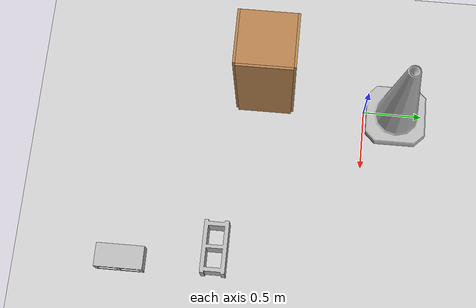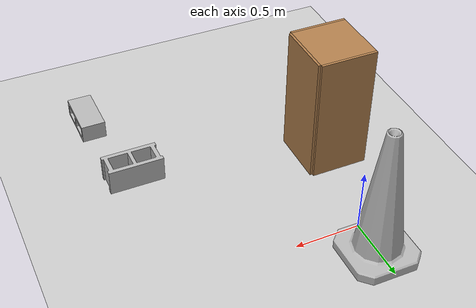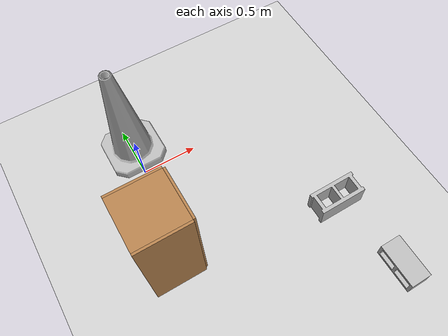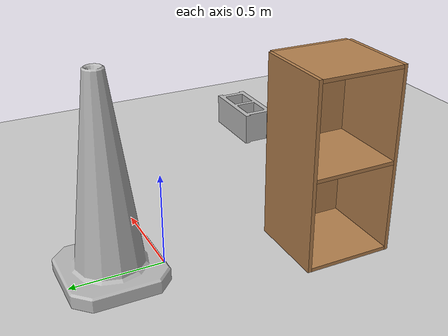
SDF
<sdf version="1.7">
 <world name="default">
  <light name="sun" type="directional">
   <pose>0 0 10 0 -0 0</pose>
   <diffuse>0.8 0.8 0.8 1</diffuse>
   <specular>0.2 0.2 0.2 1</specular>
   <attenuation>
    <range>1000</range>
    <constant>0.9</constant>
    <linear>0.01</linear>
    <quadratic>0.001</quadratic>
   </attenuation>
   <direction>-0.5 0.1 -0.9</direction>
   <spot><inner_angle>0</inner_angle><outer_angle>0</outer_angle><falloff>0</falloff></spot>
  </light>
  <model name="ground_plane">
   <static>1</static>
   <link name="link">
    <collision name="collision">
     <geometry><plane><normal>0 0 1</normal><size>100 100</size></plane></geometry>
     <surface>
      <contact><collide_bitmask>65535</collide_bitmask></contact>
      <friction><ode><mu>100</mu><mu2>50</mu2></ode></friction>
     </surface>
    </collision>
    <visual name="visual">
     <cast_shadows>0</cast_shadows>
     <geometry><plane><normal>0 0 1</normal><size>100 100</size></plane></geometry>
     <material>
      <script><uri>file://media/materials/scripts/gazebo.material</uri><name>Gazebo/Grey</name></script>
     </material>
    </visual>
   </link>
  </model>
  <gravity>0 0 -9.8</gravity>
  <magnetic_field>6e-06 2.3e-05 -4.2e-05</magnetic_field>
  <atmosphere type="adiabatic"/>
  <physics type="ode">
   <max_step_size>0.001</max_step_size>
   <real_time_factor>1</real_time_factor>
   <real_time_update_rate>1000</real_time_update_rate>
  </physics>
  <scene><ambient>0.4 0.4 0.4 1</ambient><background>0.7 0.7 0.7 1</background><shadows>1</shadows></scene>
  <audio><device>default</device></audio>
  <spherical_coordinates>
   <surface_model>EARTH_WGS84</surface_model>
   <latitude_deg>0</latitude_deg>
   <longitude_deg>0</longitude_deg>
   <elevation>0</elevation>
   <heading_deg>0</heading_deg>
  </spherical_coordinates>
  <model name="cabinet">
   <static>1</static>
   <link name="cabinet_bottom_plate">
    <inertial>
     <pose>0 0 -1 0 -0 0</pose>
     <inertia><ixx>2.05</ixx><ixy>0</ixy><ixz>0</ixz><iyy>2.05</iyy><iyz>0</iyz><izz>2.05</izz></inertia>
     <mass>25</mass>
    </inertial>
    <collision name="cabinet_bottom_plate_geom">
     <pose>0 0 0.01 0 -0 0</pose>
     <geometry><box><size>0.45 0.45 0.02</size></box></geometry>
    </collision>
    <visual name="cabinet_bottom_plate_geom_visual">
     <pose>0 0 0.01 0 -0 0</pose>
     <geometry><box><size>0.45 0.45 0.02</size></box></geometry>
     <material>
      <script><uri>file://media/materials/scripts/gazebo.material</uri><name>Gazebo/Wood</name></script>
     </material>
    </visual>
    <collision name="cabinet_bottom_plate_geom_cabinet_back_plate">
     <pose>0.235 0 0.51 0 -0 0</pose>
     <geometry><box><size>0.02 0.45 1.02</size></box></geometry>
    </collision>
    <visual name="cabinet_bottom_plate_geom_cabinet_back_plate_visual">
     <pose>0.235 0 0.51 0 -0 0</pose>
     <geometry><box><size>0.02 0.45 1.02</size></box></geometry>
     <material>
      <script><uri>file://media/materials/scripts/gazebo.material</uri><name>Gazebo/Wood</name></script>
     </material>
    </visual>
    <collision name="cabinet_bottom_plate_geom_cabinet_left_plate">
     <pose>0 0.235 0.51 0 -0 0</pose>
     <geometry><box><size>0.45 0.02 1.02</size></box></geometry>
    </collision>
    <visual name="cabinet_bottom_plate_geom_cabinet_left_plate_visual">
     <pose>0 0.235 0.51 0 -0 0</pose>
     <geometry><box><size>0.45 0.02 1.02</size></box></geometry>
     <material>
      <script><uri>file://media/materials/scripts/gazebo.material</uri><name>Gazebo/Wood</name></script>
     </material>
    </visual>
    <collision name="cabinet_bottom_plate_geom_cabinet_middle_plate">
     <pose>0 0 0.51 0 -0 0</pose>
     <geometry><box><size>0.45 0.45 0.02</size></box></geometry>
    </collision>
    <visual name="cabinet_bottom_plate_geom_cabinet_middle_plate_visual">
     <pose>0 0 0.51 0 -0 0</pose>
     <geometry><box><size>0.45 0.45 0.02</size></box></geometry>
     <material>
      <script><uri>file://media/materials/scripts/gazebo.material</uri><name>Gazebo/Wood</name></script>
     </material>
    </visual>
    <collision name="cabinet_bottom_plate_geom_cabinet_right_plate">
     <pose>0 -0.235 0.51 0 -0 0</pose>
     <geometry><box><size>0.45 0.02 1.02</size></box></geometry>
    </collision>
    <visual name="cabinet_bottom_plate_geom_cabinet_right_plate_visual">
     <pose>0 -0.235 0.51 0 -0 0</pose>
     <geometry><box><size>0.45 0.02 1.02</size></box></geometry>
     <material>
      <script><uri>file://media/materials/scripts/gazebo.material</uri><name>Gazebo/Wood</name></script>
     </material>
    </visual>
    <collision name="cabinet_bottom_plate_geom_cabinet_top_plate">
     <pose>0 0 1.01 0 -0 0</pose>
     <geometry><box><size>0.45 0.45 0.02</size></box></geometry>
    </collision>
    <visual name="cabinet_bottom_plate_geom_cabinet_top_plate_visual">
     <pose>0 0 1.01 0 -0 0</pose>
     <geometry><box><size>0.45 0.45 0.02</size></box></geometry>
     <material>
      <script><uri>file://media/materials/scripts/gazebo.material</uri><name>Gazebo/Wood</name></script>
     </material>
    </visual>
   </link>
   <pose>-0.185929 -0.852549 0 0 -0 0</pose>
  </model>
  <model name="cinder_block">
   <link name="link">
    <inertial>
     <pose>0 0 0.1016 0 -0 0</pose>
     <mass>5</mass>
     <inertia>
      <ixx>0.028705</ixx>
      <ixy>0</ixy>
      <iyy>0.073708</iyy>
      <ixz>0</ixz>
      <iyz>0</iyz>
      <izz>0.06908</izz>
     </inertia>
    </inertial>
    <visual name="visual">
     <geometry><mesh><uri>model://cinder_block/meshes/cinder_block.dae</uri></mesh></geometry>
    </visual>
    <collision name="left">
     <pose>0 -0.08465 0.1016 0 -0 0</pose>
     <geometry><box><size>0.43495 0.0339 0.2032</size></box></geometry>
     <surface>
      <contact><ode><max_vel>0.1</max_vel><min_depth>0.001</min_depth></ode></contact>
      <friction><ode><mu>1</mu><mu2>1</mu2></ode></friction>
     </surface>
    </collision>
    <collision name="right">
     <pose>0 0.08465 0.1016 0 -0 0</pose>
     <geometry><box><size>0.43495 0.0339 0.2032</size></box></geometry>
     <surface>
      <contact><ode><max_vel>0.1</max_vel><min_depth>0.001</min_depth></ode></contact>
      <friction><ode><mu>1</mu><mu2>1</mu2></ode></friction>
     </surface>
    </collision>
    <collision name="front">
     <pose>0.18625 0 0.1016 0 -0 0</pose>
     <geometry><box><size>0.0339 0.1354 0.203</size></box></geometry>
     <surface>
      <contact><ode><max_vel>0.1</max_vel><min_depth>0.001</min_depth></ode></contact>
      <friction><ode><mu>1</mu><mu2>1</mu2></ode></friction>
     </surface>
    </collision>
    <collision name="middle">
     <pose>0 0 0.1016 0 -0 0</pose>
     <geometry><box><size>0.0339 0.1354 0.203</size></box></geometry>
     <surface>
      <contact><ode><max_vel>0.1</max_vel><min_depth>0.001</min_depth></ode></contact>
      <friction><ode><mu>1</mu><mu2>1</mu2></ode></friction>
     </surface>
    </collision>
    <collision name="back">
     <pose>-0.18625 0 0.1016 0 -0 0</pose>
     <geometry><box><size>0.0339 0.1354 0.203</size></box></geometry>
     <surface>
      <contact><ode><max_vel>0.1</max_vel><min_depth>0.001</min_depth></ode></contact>
      <friction><ode><mu>1</mu><mu2>1</mu2></ode></friction>
     </surface>
    </collision>
   </link>
   <pose>1.30604 -1.14938 -6e-06 0 2.8e-05 0</pose>
  </model>
  <model name="cinder_block_2">
   <link name="link">
    <inertial>
     <pose>0 0 0.071438 0 -0 0</pose>
     <mass>5</mass>
     <inertia>
      <ixx>0.06908</ixx>
      <ixy>0</ixy>
      <iyy>0.028705</iyy>
      <ixz>0</ixz>
      <iyz>0</iyz>
      <izz>0.073708</izz>
     </inertia>
    </inertial>
    <visual name="visual">
     <geometry><mesh><uri>model://cinder_block_2/meshes/cinder_block.dae</uri></mesh></geometry>
    </visual>
    <collision name="top">
     <pose>0 0 0.130175 0 -0 0</pose>
     <geometry><box><size>0.19368 0.396875 0.0254</size></box></geometry>
     <surface>
      <contact><ode><max_vel>0.1</max_vel><min_depth>0.001</min_depth></ode></contact>
      <friction><ode><mu>1</mu><mu2>1</mu2></ode></friction>
     </surface>
    </collision>
    <collision name="bottom">
     <pose>0 0 0.0127 0 -0 0</pose>
     <geometry><box><size>0.19368 0.396875 0.0254</size></box></geometry>
     <surface>
      <contact><ode><max_vel>0.1</max_vel><min_depth>0.001</min_depth></ode></contact>
      <friction><ode><mu>1</mu><mu2>1</mu2></ode></friction>
     </surface>
    </collision>
    <collision name="left">
     <pose>0 -0.185738 0.071438 0 -0 0</pose>
     <geometry><box><size>0.19368 0.0254 0.092075</size></box></geometry>
     <surface>
      <contact><ode><max_vel>0.1</max_vel><min_depth>0.001</min_depth></ode></contact>
      <friction><ode><mu>1</mu><mu2>1</mu2></ode></friction>
     </surface>
    </collision>
    <collision name="right">
     <pose>0 0.185738 0.071438 0 -0 0</pose>
     <geometry><box><size>0.19368 0.0254 0.092075</size></box></geometry>
     <surface>
      <contact><ode><max_vel>0.1</max_vel><min_depth>0.001</min_depth></ode></contact>
      <friction><ode><mu>1</mu><mu2>1</mu2></ode></friction>
     </surface>
    </collision>
    <collision name="middle">
     <pose>0 0 0.071438 0 -0 0</pose>
     <geometry><box><size>0.19368 0.0254 0.092075</size></box></geometry>
     <surface>
      <contact><ode><max_vel>0.1</max_vel><min_depth>0.001</min_depth></ode></contact>
      <friction><ode><mu>1</mu><mu2>1</mu2></ode></friction>
     </surface>
    </collision>
   </link>
   <pose>1.43904 -1.91708 -1e-05 0 -0 0</pose>
  </model>
  <model name="Construction Cone">
   <link name="link">
    <collision name="collision">
     <geometry>
      <mesh><scale>10 10 10</scale><uri>model://construction_cone/meshes/construction_cone.dae</uri></mesh>
     </geometry>
    </collision>
    <visual name="visual">
     <geometry>
      <mesh><scale>10 10 10</scale><uri>model://construction_cone/meshes/construction_cone.dae</uri></mesh>
     </geometry>
    </visual>
    <inertial>
     <inertia><ixx>1</ixx><ixy>0</ixy><ixz>0</ixz><iyy>1</iyy><iyz>0</iyz><izz>1</izz></inertia>
     <mass>1</mass>
    </inertial>
   </link>
   <pose>0.016478 0.275587 -1e-05 -1e-06 0 0</pose>
  </model>
 </world>
</sdf>
